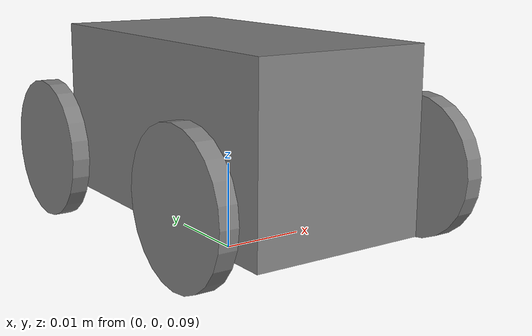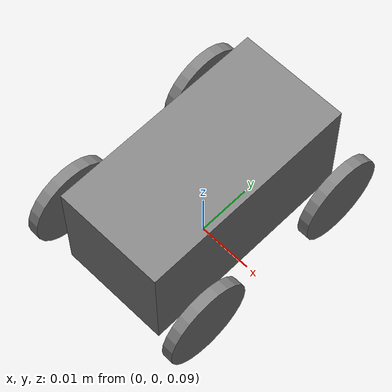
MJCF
<mujoco>
<!-- configuracion del compilador -->
    <option timestep="0.002" gravity="0 0 -9.8"/>

    <!-- valores por defecto para la simulación -->
    <default>
        <light castshadow="false" diffuse="1 1 1"/>
        <joint frictionloss="1" damping="1"/>
    </default>

    <asset>
        <texture name="grid" type="2d" builtin="checker" rgb1=".1 .2 .3"
         rgb2=".2 .3 .4" width="300" height="300"/>
        <material name="grid" texture="grid" texrepeat="8 8" reflectance=".2"/>
    </asset>

    <!-- modelo -->
    <worldbody>

        <camera name="closeup" pos="0.05 -0.1 .05" axisangle="1 0.5 0 60"/>
        <!-- luces -->
        <light pos="0 0 1"/>

        <!-- piso -->
        <geom name="ground" size=".2 .2 .01" type="plane" material="grid"/>

        <!-- car -->
        <body name="car" pos="0 0 0.1">
            <freejoint/>
            <body name="base" pos="0 0 0.005">
                <geom name="base" type="box" size="0.01 0.02 0.01"/>
             </body>
             <body name="wheel1" pos="0.015 0.015 0.001">
                 <geom
                    name="wheel1"
                    type="cylinder"
                    size="0.008 0.001"
                    quat="1 0 1 0"
                    solimp=".99 .99 .01"
                     solref=".001 1"
                />
                <joint name="joint1" pos="0 0 0" axis="1 0 0"/>
            </body>
            <body name="wheel2" pos="-0.015 0.015 0.001">
                <geom
                    name="wheel2"
                    type="cylinder"
                    size="0.008 .001"
                    quat="1 0 1 0"
                />
                <joint name="joint2" pos="0 0 0" axis="-1 0 0"/>
            </body>
            <body name="wheel3" pos="0.015 -0.015 0.001">
                <geom
                    name="wheel3"
                    type="cylinder"
                    size="0.008 .001"
                    quat="1 0 1 0"
                />
                <joint name="joint3" pos="0 0 0" axis="1 0 0"/>
            </body>
            <body name="wheel4" pos="-0.015 -0.015 0.001">
                <geom
                    name="wheel4"
                    type="cylinder"
                    size="0.008 .001"
                    quat="1 0 1 0"
                />
                <joint name="joint4" pos="0 0 0" axis="-1 0 0"/>
            </body>
        </body>
    </worldbody>

    <!-- motores -->
    <actuator>
        <velocity name="joint1_motor" joint="joint1"/>
        <velocity name="joint2_motor" joint="joint2"/>
        <velocity name="joint3_motor" joint="joint3"/>
        <velocity name="joint4_motor" joint="joint4"/>
    </actuator>
</mujoco>
